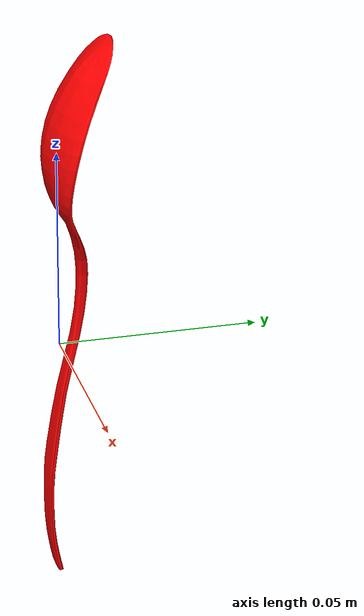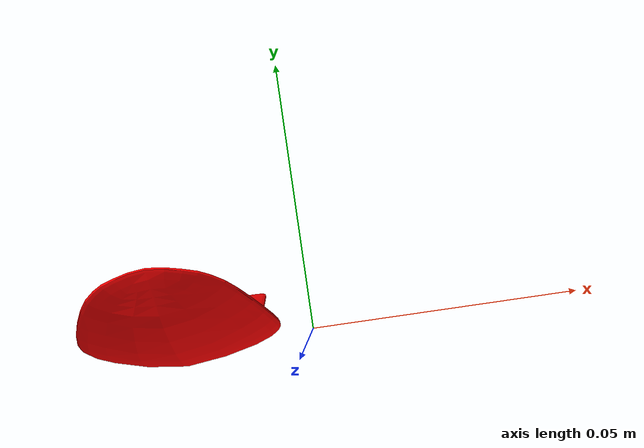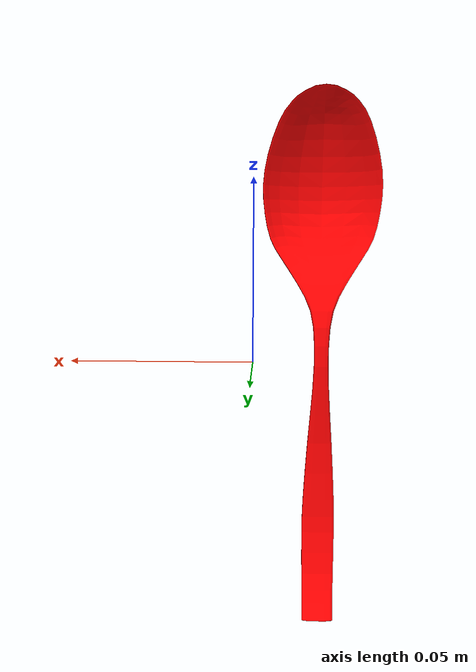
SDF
<?xml version="1.0" ?>
<sdf version="1.6">
  <model name="utensil_spoon_red">
    <static>false</static>
    <link name="link">
    <inertial>
      <!-- Volume:  2.3163060000e-06 -->
      <mass> 0.1 </mass>
      <!-- Center of mass: -1.8130500000e-02  5.1318700000e-03  1.6889350000e-02 -->
      <pose> -1.8130500000e-02  5.1318700000e-03  1.6889350000e-02 0 0 0 </pose>
      <!-- Inertia matrix -->
      <inertia>
        <ixx>  1.5663434365e-04 </ixx>
        <ixy>  1.4402242191e-08 </ixy>
        <ixz> -5.5441724884e-08 </ixz>
        <iyy>  1.5917366704e-04 </iyy>
        <iyz> -6.1055231908e-06 </iyz>
        <izz>  4.8963047197e-06 </izz>
      </inertia>
    </inertial>
      <visual name="visual">
        <geometry>
          <mesh>
            <scale>1 1 1</scale>
            <uri>model://utensil_spoon_red/meshes/model.dae</uri>
          </mesh>
        </geometry>
        <material>
          <lighting>1</lighting>
          <ambient>1.0 0.0 0.0</ambient>
          <diffuse>1.0 0.0 0.0</diffuse>
          <specular>1.0 0.0 0.0</specular>
          <emissive>0 0 0 1</emissive>
          <shader type='vertex'>
            <normal_map>__default__</normal_map>
          </shader>
        </material>
      </visual>
      <collision name='collision'>
        <laser_retro>0</laser_retro>
        <max_contacts>10</max_contacts>
        <pose frame=''>0 0 0 0 0 0</pose>
        <geometry>
          <mesh>
            <uri>model://utensil_spoon_red/meshes/model.dae</uri>
            <scale>1 1 1</scale>
          </mesh>
        </geometry>
      </collision>
    </link>
  </model>
</sdf>
